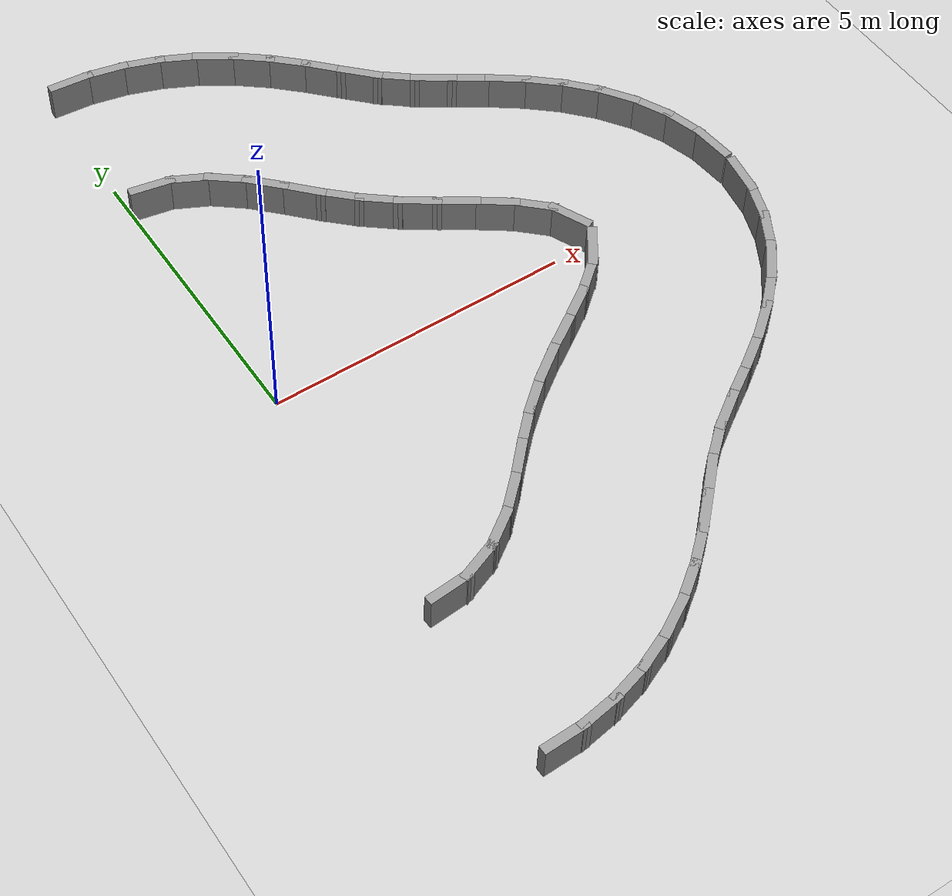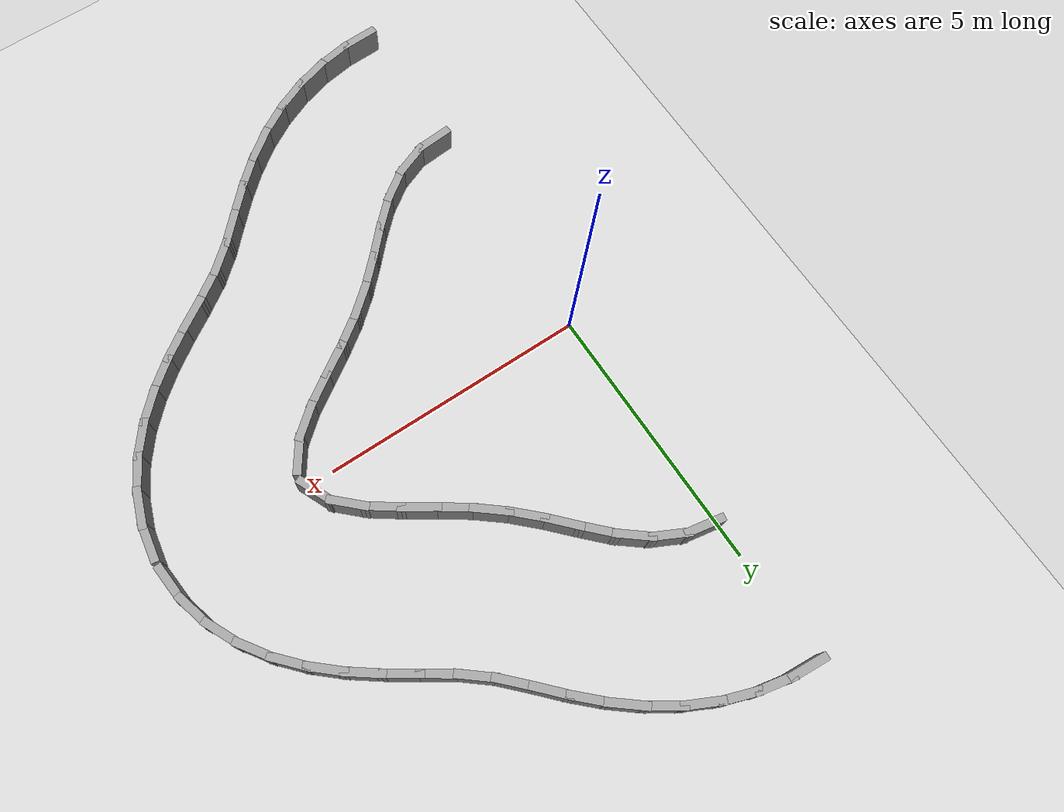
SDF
<sdf version="1.7">
 <world name="default">
  <model name="ground_plane">
   <static>1</static>
   <link name="link">
    <collision name="collision">
     <geometry><plane><normal>0 0 1</normal><size>100 100</size></plane></geometry>
     <surface><friction><ode><mu>100</mu><mu2>50</mu2></ode></friction></surface>
    </collision>
    <visual name="visual">
     <cast_shadows>0</cast_shadows>
     <geometry><plane><normal>0 0 1</normal><size>100 100</size></plane></geometry>
     <material>
      <script><uri>file://media/materials/scripts/gazebo.material</uri><name>Gazebo/Grey</name></script>
     </material>
    </visual>
   </link>
  </model>
  <model name="rand_lobed_08">
   <link name="Wall_0">
    <collision name="Wall_0_Collision">
     <geometry><box><size>0.7386 0.1500 0.6000</size></box></geometry>
     <pose>0 0 0.3000 0 -0 0</pose>
    </collision>
    <visual name="Wall_0_Visual">
     <pose>0 0 0.3000 0 -0 0</pose>
     <geometry><box><size>0.7386 0.1500 0.6000</size></box></geometry>
     <material>
      <script><uri>file://media/materials/scripts/gazebo.material</uri><name>Gazebo/Grey</name></script>
      <ambient>1 1 1 1</ambient>
     </material>
    </visual>
    <pose>5.4286 0.2678 0 0 -0 1.99792</pose>
   </link>
   <link name="Wall_1">
    <collision name="Wall_1_Collision">
     <geometry><box><size>0.7489 0.1500 0.6000</size></box></geometry>
     <pose>0 0 0.3000 0 -0 0</pose>
    </collision>
    <visual name="Wall_1_Visual">
     <pose>0 0 0.3000 0 -0 0</pose>
     <geometry><box><size>0.7489 0.1500 0.6000</size></box></geometry>
     <material>
      <script><uri>file://media/materials/scripts/gazebo.material</uri><name>Gazebo/Grey</name></script>
      <ambient>1 1 1 1</ambient>
     </material>
    </visual>
    <pose>5.0886 0.7409 0 0 -0 2.38649</pose>
   </link>
   <link name="Wall_2">
    <collision name="Wall_2_Collision">
     <geometry><box><size>0.7498 0.1500 0.6000</size></box></geometry>
     <pose>0 0 0.3000 0 -0 0</pose>
    </collision>
    <visual name="Wall_2_Visual">
     <pose>0 0 0.3000 0 -0 0</pose>
     <geometry><box><size>0.7498 0.1500 0.6000</size></box></geometry>
     <material>
      <script><uri>file://media/materials/scripts/gazebo.material</uri><name>Gazebo/Grey</name></script>
      <ambient>1 1 1 1</ambient>
     </material>
    </visual>
    <pose>4.6254 1.1188 0 0 -0 2.52788</pose>
   </link>
   <link name="Wall_3">
    <collision name="Wall_3_Collision">
     <geometry><box><size>0.7500 0.1500 0.6000</size></box></geometry>
     <pose>0 0 0.3000 0 -0 0</pose>
    </collision>
    <visual name="Wall_3_Visual">
     <pose>0 0 0.3000 0 -0 0</pose>
     <geometry><box><size>0.7500 0.1500 0.6000</size></box></geometry>
     <material>
      <script><uri>file://media/materials/scripts/gazebo.material</uri><name>Gazebo/Grey</name></script>
      <ambient>1 1 1 1</ambient>
     </material>
    </visual>
    <pose>4.1282 1.4542 0 0 -0 2.56857</pose>
   </link>
   <link name="Wall_4">
    <collision name="Wall_4_Collision">
     <geometry><box><size>0.7499 0.1500 0.6000</size></box></geometry>
     <pose>0 0 0.3000 0 -0 0</pose>
    </collision>
    <visual name="Wall_4_Visual">
     <pose>0 0 0.3000 0 -0 0</pose>
     <geometry><box><size>0.7499 0.1500 0.6000</size></box></geometry>
     <material>
      <script><uri>file://media/materials/scripts/gazebo.material</uri><name>Gazebo/Grey</name></script>
      <ambient>1 1 1 1</ambient>
     </material>
    </visual>
    <pose>3.6289 1.7867 0 0 -0 2.53948</pose>
   </link>
   <link name="Wall_5">
    <collision name="Wall_5_Collision">
     <geometry><box><size>0.7498 0.1500 0.6000</size></box></geometry>
     <pose>0 0 0.3000 0 -0 0</pose>
    </collision>
    <visual name="Wall_5_Visual">
     <pose>0 0 0.3000 0 -0 0</pose>
     <geometry><box><size>0.7498 0.1500 0.6000</size></box></geometry>
     <material>
      <script><uri>file://media/materials/scripts/gazebo.material</uri><name>Gazebo/Grey</name></script>
      <ambient>1 1 1 1</ambient>
     </material>
    </visual>
    <pose>3.1477 2.1443 0 0 -0 2.46569</pose>
   </link>
   <link name="Wall_6">
    <collision name="Wall_6_Collision">
     <geometry><box><size>0.7499 0.1500 0.6000</size></box></geometry>
     <pose>0 0 0.3000 0 -0 0</pose>
    </collision>
    <visual name="Wall_6_Visual">
     <pose>0 0 0.3000 0 -0 0</pose>
     <geometry><box><size>0.7499 0.1500 0.6000</size></box></geometry>
     <material>
      <script><uri>file://media/materials/scripts/gazebo.material</uri><name>Gazebo/Grey</name></script>
      <ambient>1 1 1 1</ambient>
     </material>
    </visual>
    <pose>2.6962 2.5384 0 0 -0 2.38234</pose>
   </link>
   <link name="Wall_7">
    <collision name="Wall_7_Collision">
     <geometry><box><size>0.7500 0.1500 0.6000</size></box></geometry>
     <pose>0 0 0.3000 0 -0 0</pose>
    </collision>
    <visual name="Wall_7_Visual">
     <pose>0 0 0.3000 0 -0 0</pose>
     <geometry><box><size>0.7500 0.1500 0.6000</size></box></geometry>
     <material>
      <script><uri>file://media/materials/scripts/gazebo.material</uri><name>Gazebo/Grey</name></script>
      <ambient>1 1 1 1</ambient>
     </material>
    </visual>
    <pose>2.2717 2.9620 0 0 -0 2.33183</pose>
   </link>
   <link name="Wall_8">
    <collision name="Wall_8_Collision">
     <geometry><box><size>0.7499 0.1500 0.6000</size></box></geometry>
     <pose>0 0 0.3000 0 -0 0</pose>
    </collision>
    <visual name="Wall_8_Visual">
     <pose>0 0 0.3000 0 -0 0</pose>
     <geometry><box><size>0.7499 0.1500 0.6000</size></box></geometry>
     <material>
      <script><uri>file://media/materials/scripts/gazebo.material</uri><name>Gazebo/Grey</name></script>
      <ambient>1 1 1 1</ambient>
     </material>
    </visual>
    <pose>1.8532 3.3918 0 0 -0 2.35398</pose>
   </link>
   <link name="Wall_9">
    <collision name="Wall_9_Collision">
     <geometry><box><size>0.7493 0.1500 0.6000</size></box></geometry>
     <pose>0 0 0.3000 0 -0 0</pose>
    </collision>
    <visual name="Wall_9_Visual">
     <pose>0 0 0.3000 0 -0 0</pose>
     <geometry><box><size>0.7493 0.1500 0.6000</size></box></geometry>
     <material>
      <script><uri>file://media/materials/scripts/gazebo.material</uri><name>Gazebo/Grey</name></script>
      <ambient>1 1 1 1</ambient>
     </material>
    </visual>
    <pose>1.4067 3.7904 0 0 -0 2.47175</pose>
   </link>
   <link name="Wall_10">
    <collision name="Wall_10_Collision">
     <geometry><box><size>0.7484 0.1500 0.6000</size></box></geometry>
     <pose>0 0 0.3000 0 -0 0</pose>
    </collision>
    <visual name="Wall_10_Visual">
     <pose>0 0 0.3000 0 -0 0</pose>
     <geometry><box><size>0.7484 0.1500 0.6000</size></box></geometry>
     <material>
      <script><uri>file://media/materials/scripts/gazebo.material</uri><name>Gazebo/Grey</name></script>
      <ambient>1 1 1 1</ambient>
     </material>
    </visual>
    <pose>0.9035 4.1090 0 0 -0 2.68288</pose>
   </link>
   <link name="Wall_11">
    <collision name="Wall_11_Collision">
     <geometry><box><size>0.7477 0.1500 0.6000</size></box></geometry>
     <pose>0 0 0.3000 0 -0 0</pose>
    </collision>
    <visual name="Wall_11_Visual">
     <pose>0 0 0.3000 0 -0 0</pose>
     <geometry><box><size>0.7477 0.1500 0.6000</size></box></geometry>
     <material>
      <script><uri>file://media/materials/scripts/gazebo.material</uri><name>Gazebo/Grey</name></script>
      <ambient>1 1 1 1</ambient>
     </material>
    </visual>
    <pose>0.3411 4.2944 0 0 -0 2.96334</pose>
   </link>
   <link name="Wall_36">
    <collision name="Wall_36_Collision">
     <geometry><box><size>0.7476 0.1500 0.6000</size></box></geometry>
     <pose>0 0 0.3000 0 -0 0</pose>
    </collision>
    <visual name="Wall_36_Visual">
     <pose>0 0 0.3000 0 -0 0</pose>
     <geometry><box><size>0.7476 0.1500 0.6000</size></box></geometry>
     <material>
      <script><uri>file://media/materials/scripts/gazebo.material</uri><name>Gazebo/Grey</name></script>
      <ambient>1 1 1 1</ambient>
     </material>
    </visual>
    <pose>0.1569 -4.3183 0 0 -0 0.08225</pose>
   </link>
   <link name="Wall_37">
    <collision name="Wall_37_Collision">
     <geometry><box><size>0.7481 0.1500 0.6000</size></box></geometry>
     <pose>0 0 0.3000 0 -0 0</pose>
    </collision>
    <visual name="Wall_37_Visual">
     <pose>0 0 0.3000 0 -0 0</pose>
     <geometry><box><size>0.7481 0.1500 0.6000</size></box></geometry>
     <material>
      <script><uri>file://media/materials/scripts/gazebo.material</uri><name>Gazebo/Grey</name></script>
      <ambient>1 1 1 1</ambient>
     </material>
    </visual>
    <pose>0.7328 -4.1837 0 0 -0 0.37663</pose>
   </link>
   <link name="Wall_38">
    <collision name="Wall_38_Collision">
     <geometry><box><size>0.7490 0.1500 0.6000</size></box></geometry>
     <pose>0 0 0.3000 0 -0 0</pose>
    </collision>
    <visual name="Wall_38_Visual">
     <pose>0 0 0.3000 0 -0 0</pose>
     <geometry><box><size>0.7490 0.1500 0.6000</size></box></geometry>
     <material>
      <script><uri>file://media/materials/scripts/gazebo.material</uri><name>Gazebo/Grey</name></script>
      <ambient>1 1 1 1</ambient>
     </material>
    </visual>
    <pose>1.2559 -3.9014 0 0 -0 0.61299</pose>
   </link>
   <link name="Wall_39">
    <collision name="Wall_39_Collision">
     <geometry><box><size>0.7497 0.1500 0.6000</size></box></geometry>
     <pose>0 0 0.3000 0 -0 0</pose>
    </collision>
    <visual name="Wall_39_Visual">
     <pose>0 0 0.3000 0 -0 0</pose>
     <geometry><box><size>0.7497 0.1500 0.6000</size></box></geometry>
     <material>
      <script><uri>file://media/materials/scripts/gazebo.material</uri><name>Gazebo/Grey</name></script>
      <ambient>1 1 1 1</ambient>
     </material>
    </visual>
    <pose>1.7179 -3.5222 0 0 -0 0.76140</pose>
   </link>
   <link name="Wall_40">
    <collision name="Wall_40_Collision">
     <geometry><box><size>0.7500 0.1500 0.6000</size></box></geometry>
     <pose>0 0 0.3000 0 -0 0</pose>
    </collision>
    <visual name="Wall_40_Visual">
     <pose>0 0 0.3000 0 -0 0</pose>
     <geometry><box><size>0.7500 0.1500 0.6000</size></box></geometry>
     <material>
      <script><uri>file://media/materials/scripts/gazebo.material</uri><name>Gazebo/Grey</name></script>
      <ambient>1 1 1 1</ambient>
     </material>
    </visual>
    <pose>2.1414 -3.0976 0 0 -0 0.81219</pose>
   </link>
   <link name="Wall_41">
    <collision name="Wall_41_Collision">
     <geometry><box><size>0.7499 0.1500 0.6000</size></box></geometry>
     <pose>0 0 0.3000 0 -0 0</pose>
    </collision>
    <visual name="Wall_41_Visual">
     <pose>0 0 0.3000 0 -0 0</pose>
     <geometry><box><size>0.7499 0.1500 0.6000</size></box></geometry>
     <material>
      <script><uri>file://media/materials/scripts/gazebo.material</uri><name>Gazebo/Grey</name></script>
      <ambient>1 1 1 1</ambient>
     </material>
    </visual>
    <pose>2.5609 -2.6688 0 0 -0 0.78065</pose>
   </link>
   <link name="Wall_42">
    <collision name="Wall_42_Collision">
     <geometry><box><size>0.7498 0.1500 0.6000</size></box></geometry>
     <pose>0 0 0.3000 0 -0 0</pose>
    </collision>
    <visual name="Wall_42_Visual">
     <pose>0 0 0.3000 0 -0 0</pose>
     <geometry><box><size>0.7498 0.1500 0.6000</size></box></geometry>
     <material>
      <script><uri>file://media/materials/scripts/gazebo.material</uri><name>Gazebo/Grey</name></script>
      <ambient>1 1 1 1</ambient>
     </material>
    </visual>
    <pose>3.0028 -2.2638 0 0 -0 0.70291</pose>
   </link>
   <link name="Wall_43">
    <collision name="Wall_43_Collision">
     <geometry><box><size>0.7499 0.1500 0.6000</size></box></geometry>
     <pose>0 0 0.3000 0 -0 0</pose>
    </collision>
    <visual name="Wall_43_Visual">
     <pose>0 0 0.3000 0 -0 0</pose>
     <geometry><box><size>0.7499 0.1500 0.6000</size></box></geometry>
     <material>
      <script><uri>file://media/materials/scripts/gazebo.material</uri><name>Gazebo/Grey</name></script>
      <ambient>1 1 1 1</ambient>
     </material>
    </visual>
    <pose>3.4754 -1.8952 0 0 -0 0.62189</pose>
   </link>
   <link name="Wall_44">
    <collision name="Wall_44_Collision">
     <geometry><box><size>0.7500 0.1500 0.6000</size></box></geometry>
     <pose>0 0 0.3000 0 -0 0</pose>
    </collision>
    <visual name="Wall_44_Visual">
     <pose>0 0 0.3000 0 -0 0</pose>
     <geometry><box><size>0.7500 0.1500 0.6000</size></box></geometry>
     <material>
      <script><uri>file://media/materials/scripts/gazebo.material</uri><name>Gazebo/Grey</name></script>
      <ambient>1 1 1 1</ambient>
     </material>
    </visual>
    <pose>3.9708 -1.5571 0 0 -0 0.57565</pose>
   </link>
   <link name="Wall_45">
    <collision name="Wall_45_Collision">
     <geometry><box><size>0.7499 0.1500 0.6000</size></box></geometry>
     <pose>0 0 0.3000 0 -0 0</pose>
    </collision>
    <visual name="Wall_45_Visual">
     <pose>0 0 0.3000 0 -0 0</pose>
     <geometry><box><size>0.7499 0.1500 0.6000</size></box></geometry>
     <material>
      <script><uri>file://media/materials/scripts/gazebo.material</uri><name>Gazebo/Grey</name></script>
      <ambient>1 1 1 1</ambient>
     </material>
    </visual>
    <pose>4.4714 -1.2264 0 0 -0 0.59210</pose>
   </link>
   <link name="Wall_46">
    <collision name="Wall_46_Collision">
     <geometry><box><size>0.7493 0.1500 0.6000</size></box></geometry>
     <pose>0 0 0.3000 0 -0 0</pose>
    </collision>
    <visual name="Wall_46_Visual">
     <pose>0 0 0.3000 0 -0 0</pose>
     <geometry><box><size>0.7493 0.1500 0.6000</size></box></geometry>
     <material>
      <script><uri>file://media/materials/scripts/gazebo.material</uri><name>Gazebo/Grey</name></script>
      <ambient>1 1 1 1</ambient>
     </material>
    </visual>
    <pose>4.9502 -0.8668 0 0 -0 0.69628</pose>
   </link>
   <link name="Wall_47">
    <collision name="Wall_47_Collision">
     <geometry><box><size>0.7452 0.1500 0.6000</size></box></geometry>
     <pose>0 0 0.3000 0 -0 0</pose>
    </collision>
    <visual name="Wall_47_Visual">
     <pose>0 0 0.3000 0 -0 0</pose>
     <geometry><box><size>0.7452 0.1500 0.6000</size></box></geometry>
     <material>
      <script><uri>file://media/materials/scripts/gazebo.material</uri><name>Gazebo/Grey</name></script>
      <ambient>1 1 1 1</ambient>
     </material>
    </visual>
    <pose>5.3488 -0.4294 0 0 -0 0.96819</pose>
   </link>
   <link name="Wall_48">
    <collision name="Wall_48_Collision">
     <geometry><box><size>0.7491 0.1500 0.6000</size></box></geometry>
     <pose>0 0 0.3000 0 -0 0</pose>
    </collision>
    <visual name="Wall_48_Visual">
     <pose>0 0 0.3000 0 -0 0</pose>
     <geometry><box><size>0.7491 0.1500 0.6000</size></box></geometry>
     <material>
      <script><uri>file://media/materials/scripts/gazebo.material</uri><name>Gazebo/Grey</name></script>
      <ambient>1 1 1 1</ambient>
     </material>
    </visual>
    <pose>8.1975 0.2982 0 0 -0 1.66530</pose>
   </link>
   <link name="Wall_49">
    <collision name="Wall_49_Collision">
     <geometry><box><size>0.7492 0.1500 0.6000</size></box></geometry>
     <pose>0 0 0.3000 0 -0 0</pose>
    </collision>
    <visual name="Wall_49_Visual">
     <pose>0 0 0.3000 0 -0 0</pose>
     <geometry><box><size>0.7492 0.1500 0.6000</size></box></geometry>
     <material>
      <script><uri>file://media/materials/scripts/gazebo.material</uri><name>Gazebo/Grey</name></script>
      <ambient>1 1 1 1</ambient>
     </material>
    </visual>
    <pose>8.0867 0.8844 0 0 -0 1.84998</pose>
   </link>
   <link name="Wall_50">
    <collision name="Wall_50_Collision">
     <geometry><box><size>0.7493 0.1500 0.6000</size></box></geometry>
     <pose>0 0 0.3000 0 -0 0</pose>
    </collision>
    <visual name="Wall_50_Visual">
     <pose>0 0 0.3000 0 -0 0</pose>
     <geometry><box><size>0.7493 0.1500 0.6000</size></box></geometry>
     <material>
      <script><uri>file://media/materials/scripts/gazebo.material</uri><name>Gazebo/Grey</name></script>
      <ambient>1 1 1 1</ambient>
     </material>
    </visual>
    <pose>7.8731 1.4419 0 0 -0 2.02345</pose>
   </link>
   <link name="Wall_51">
    <collision name="Wall_51_Collision">
     <geometry><box><size>0.7495 0.1500 0.6000</size></box></geometry>
     <pose>0 0 0.3000 0 -0 0</pose>
    </collision>
    <visual name="Wall_51_Visual">
     <pose>0 0 0.3000 0 -0 0</pose>
     <geometry><box><size>0.7495 0.1500 0.6000</size></box></geometry>
     <material>
      <script><uri>file://media/materials/scripts/gazebo.material</uri><name>Gazebo/Grey</name></script>
      <ambient>1 1 1 1</ambient>
     </material>
    </visual>
    <pose>7.5705 1.9572 0 0 -0 2.17990</pose>
   </link>
   <link name="Wall_52">
    <collision name="Wall_52_Collision">
     <geometry><box><size>0.7496 0.1500 0.6000</size></box></geometry>
     <pose>0 0 0.3000 0 -0 0</pose>
    </collision>
    <visual name="Wall_52_Visual">
     <pose>0 0 0.3000 0 -0 0</pose>
     <geometry><box><size>0.7496 0.1500 0.6000</size></box></geometry>
     <material>
      <script><uri>file://media/materials/scripts/gazebo.material</uri><name>Gazebo/Grey</name></script>
      <ambient>1 1 1 1</ambient>
     </material>
    </visual>
    <pose>7.1959 2.4235 0 0 -0 2.31528</pose>
   </link>
   <link name="Wall_53">
    <collision name="Wall_53_Collision">
     <geometry><box><size>0.7498 0.1500 0.6000</size></box></geometry>
     <pose>0 0 0.3000 0 -0 0</pose>
    </collision>
    <visual name="Wall_53_Visual">
     <pose>0 0 0.3000 0 -0 0</pose>
     <geometry><box><size>0.7498 0.1500 0.6000</size></box></geometry>
     <material>
      <script><uri>file://media/materials/scripts/gazebo.material</uri><name>Gazebo/Grey</name></script>
      <ambient>1 1 1 1</ambient>
     </material>
    </visual>
    <pose>6.7662 2.8405 0 0 -0 2.42709</pose>
   </link>
   <link name="Wall_54">
    <collision name="Wall_54_Collision">
     <geometry><box><size>0.7499 0.1500 0.6000</size></box></geometry>
     <pose>0 0 0.3000 0 -0 0</pose>
    </collision>
    <visual name="Wall_54_Visual">
     <pose>0 0 0.3000 0 -0 0</pose>
     <geometry><box><size>0.7499 0.1500 0.6000</size></box></geometry>
     <material>
      <script><uri>file://media/materials/scripts/gazebo.material</uri><name>Gazebo/Grey</name></script>
      <ambient>1 1 1 1</ambient>
     </material>
    </visual>
    <pose>6.2973 3.2136 0 0 -0 2.51190</pose>
   </link>
   <link name="Wall_55">
    <collision name="Wall_55_Collision">
     <geometry><box><size>0.7500 0.1500 0.6000</size></box></geometry>
     <pose>0 0 0.3000 0 -0 0</pose>
    </collision>
    <visual name="Wall_55_Visual">
     <pose>0 0 0.3000 0 -0 0</pose>
     <geometry><box><size>0.7500 0.1500 0.6000</size></box></geometry>
     <material>
      <script><uri>file://media/materials/scripts/gazebo.material</uri><name>Gazebo/Grey</name></script>
      <ambient>1 1 1 1</ambient>
     </material>
    </visual>
    <pose>5.8039 3.5545 0 0 -0 2.56202</pose>
   </link>
   <link name="Wall_56">
    <collision name="Wall_56_Collision">
     <geometry><box><size>0.7499 0.1500 0.6000</size></box></geometry>
     <pose>0 0 0.3000 0 -0 0</pose>
    </collision>
    <visual name="Wall_56_Visual">
     <pose>0 0 0.3000 0 -0 0</pose>
     <geometry><box><size>0.7499 0.1500 0.6000</size></box></geometry>
     <material>
      <script><uri>file://media/materials/scripts/gazebo.material</uri><name>Gazebo/Grey</name></script>
      <ambient>1 1 1 1</ambient>
     </material>
    </visual>
    <pose>5.3027 3.8844 0 0 -0 2.55697</pose>
   </link>
   <link name="Wall_57">
    <collision name="Wall_57_Collision">
     <geometry><box><size>0.7495 0.1500 0.6000</size></box></geometry>
     <pose>0 0 0.3000 0 -0 0</pose>
    </collision>
    <visual name="Wall_57_Visual">
     <pose>0 0 0.3000 0 -0 0</pose>
     <geometry><box><size>0.7495 0.1500 0.6000</size></box></geometry>
     <material>
      <script><uri>file://media/materials/scripts/gazebo.material</uri><name>Gazebo/Grey</name></script>
      <ambient>1 1 1 1</ambient>
     </material>
    </visual>
    <pose>4.8191 4.2380 0 0 -0 2.46338</pose>
   </link>
   <link name="Wall_58">
    <collision name="Wall_58_Collision">
     <geometry><box><size>0.7499 0.1500 0.6000</size></box></geometry>
     <pose>0 0 0.3000 0 -0 0</pose>
    </collision>
    <visual name="Wall_58_Visual">
     <pose>0 0 0.3000 0 -0 0</pose>
     <geometry><box><size>0.7499 0.1500 0.6000</size></box></geometry>
     <material>
      <script><uri>file://media/materials/scripts/gazebo.material</uri><name>Gazebo/Grey</name></script>
      <ambient>1 1 1 1</ambient>
     </material>
    </visual>
    <pose>4.3748 4.6394 0 0 -0 2.35067</pose>
   </link>
   <link name="Wall_59">
    <collision name="Wall_59_Collision">
     <geometry><box><size>0.7500 0.1500 0.6000</size></box></geometry>
     <pose>0 0 0.3000 0 -0 0</pose>
    </collision>
    <visual name="Wall_59_Visual">
     <pose>0 0 0.3000 0 -0 0</pose>
     <geometry><box><size>0.7500 0.1500 0.6000</size></box></geometry>
     <material>
      <script><uri>file://media/materials/scripts/gazebo.material</uri><name>Gazebo/Grey</name></script>
      <ambient>1 1 1 1</ambient>
     </material>
    </visual>
    <pose>3.9566 5.0695 0 0 -0 2.33354</pose>
   </link>
   <link name="Wall_60">
    <collision name="Wall_60_Collision">
     <geometry><box><size>0.7499 0.1500 0.6000</size></box></geometry>
     <pose>0 0 0.3000 0 -0 0</pose>
    </collision>
    <visual name="Wall_60_Visual">
     <pose>0 0 0.3000 0 -0 0</pose>
     <geometry><box><size>0.7499 0.1500 0.6000</size></box></geometry>
     <material>
      <script><uri>file://media/materials/scripts/gazebo.material</uri><name>Gazebo/Grey</name></script>
      <ambient>1 1 1 1</ambient>
     </material>
    </visual>
    <pose>3.5314 5.4925 0 0 -0 2.38412</pose>
   </link>
   <link name="Wall_61">
    <collision name="Wall_61_Collision">
     <geometry><box><size>0.7498 0.1500 0.6000</size></box></geometry>
     <pose>0 0 0.3000 0 -0 0</pose>
    </collision>
    <visual name="Wall_61_Visual">
     <pose>0 0 0.3000 0 -0 0</pose>
     <geometry><box><size>0.7498 0.1500 0.6000</size></box></geometry>
     <material>
      <script><uri>file://media/materials/scripts/gazebo.material</uri><name>Gazebo/Grey</name></script>
      <ambient>1 1 1 1</ambient>
     </material>
    </visual>
    <pose>3.0790 5.8855 0 0 -0 2.46860</pose>
   </link>
   <link name="Wall_62">
    <collision name="Wall_62_Collision">
     <geometry><box><size>0.7497 0.1500 0.6000</size></box></geometry>
     <pose>0 0 0.3000 0 -0 0</pose>
    </collision>
    <visual name="Wall_62_Visual">
     <pose>0 0 0.3000 0 -0 0</pose>
     <geometry><box><size>0.7497 0.1500 0.6000</size></box></geometry>
     <material>
      <script><uri>file://media/materials/scripts/gazebo.material</uri><name>Gazebo/Grey</name></script>
      <ambient>1 1 1 1</ambient>
     </material>
    </visual>
    <pose>2.5920 6.2341 0 0 -0 2.57186</pose>
   </link>
   <link name="Wall_63">
    <collision name="Wall_63_Collision">
     <geometry><box><size>0.7496 0.1500 0.6000</size></box></geometry>
     <pose>0 0 0.3000 0 -0 0</pose>
    </collision>
    <visual name="Wall_63_Visual">
     <pose>0 0 0.3000 0 -0 0</pose>
     <geometry><box><size>0.7496 0.1500 0.6000</size></box></geometry>
     <material>
      <script><uri>file://media/materials/scripts/gazebo.material</uri><name>Gazebo/Grey</name></script>
      <ambient>1 1 1 1</ambient>
     </material>
    </visual>
    <pose>2.0702 6.5276 0 0 -0 2.68671</pose>
   </link>
   <link name="Wall_64">
    <collision name="Wall_64_Collision">
     <geometry><box><size>0.7496 0.1500 0.6000</size></box></geometry>
     <pose>0 0 0.3000 0 -0 0</pose>
    </collision>
    <visual name="Wall_64_Visual">
     <pose>0 0 0.3000 0 -0 0</pose>
     <geometry><box><size>0.7496 0.1500 0.6000</size></box></geometry>
     <material>
      <script><uri>file://media/materials/scripts/gazebo.material</uri><name>Gazebo/Grey</name></script>
      <ambient>1 1 1 1</ambient>
     </material>
    </visual>
    <pose>1.5175 6.7572 0 0 -0 2.80903</pose>
   </link>
   <link name="Wall_65">
    <collision name="Wall_65_Collision">
     <geometry><box><size>0.7496 0.1500 0.6000</size></box></geometry>
     <pose>0 0 0.3000 0 -0 0</pose>
    </collision>
    <visual name="Wall_65_Visual">
     <pose>0 0 0.3000 0 -0 0</pose>
     <geometry><box><size>0.7496 0.1500 0.6000</size></box></geometry>
     <material>
      <script><uri>file://media/materials/scripts/gazebo.material</uri><name>Gazebo/Grey</name></script>
      <ambient>1 1 1 1</ambient>
     </material>
    </visual>
    <pose>0.9406 6.9163 0 0 -0 2.93595</pose>
   </link>
   <link name="Wall_66">
    <collision name="Wall_66_Collision">
     <geometry><box><size>0.7496 0.1500 0.6000</size></box></geometry>
     <pose>0 0 0.3000 0 -0 0</pose>
    </collision>
    <visual name="Wall_66_Visual">
     <pose>0 0 0.3000 0 -0 0</pose>
     <geometry><box><size>0.7496 0.1500 0.6000</size></box></geometry>
     <material>
      <script><uri>file://media/materials/scripts/gazebo.material</uri><name>Gazebo/Grey</name></script>
      <ambient>1 1 1 1</ambient>
     </material>
    </visual>
    <pose>0.3482 7.0003 0 0 -0 3.06560</pose>
   </link>
   <link name="Wall_105">
    <collision name="Wall_105_Collision">
     <geometry><box><size>0.7496 0.1500 0.6000</size></box></geometry>
     <pose>0 0 0.3000 0 -0 0</pose>
    </collision>
    <visual name="Wall_105_Visual">
     <pose>0 0 0.3000 0 -0 0</pose>
     <geometry><box><size>0.7496 0.1500 0.6000</size></box></geometry>
     <material>
      <script><uri>file://media/materials/scripts/gazebo.material</uri><name>Gazebo/Grey</name></script>
      <ambient>1 1 1 1</ambient>
     </material>
    </visual>
    <pose>0.1517 -7.0110 0 0 -0 0.03309</pose>
   </link>
   <link name="Wall_106">
    <collision name="Wall_106_Collision">
     <geometry><box><size>0.7496 0.1500 0.6000</size></box></geometry>
     <pose>0 0 0.3000 0 -0 0</pose>
    </collision>
    <visual name="Wall_106_Visual">
     <pose>0 0 0.3000 0 -0 0</pose>
     <geometry><box><size>0.7496 0.1500 0.6000</size></box></geometry>
     <material>
      <script><uri>file://media/materials/scripts/gazebo.material</uri><name>Gazebo/Grey</name></script>
      <ambient>1 1 1 1</ambient>
     </material>
    </visual>
    <pose>0.7471 -6.9523 0 0 -0 0.16319</pose>
   </link>
   <link name="Wall_107">
    <collision name="Wall_107_Collision">
     <geometry><box><size>0.7496 0.1500 0.6000</size></box></geometry>
     <pose>0 0 0.3000 0 -0 0</pose>
    </collision>
    <visual name="Wall_107_Visual">
     <pose>0 0 0.3000 0 -0 0</pose>
     <geometry><box><size>0.7496 0.1500 0.6000</size></box></geometry>
     <material>
      <script><uri>file://media/materials/scripts/gazebo.material</uri><name>Gazebo/Grey</name></script>
      <ambient>1 1 1 1</ambient>
     </material>
    </visual>
    <pose>1.3301 -6.8175 0 0 -0 0.29126</pose>
   </link>
   <link name="Wall_108">
    <collision name="Wall_108_Collision">
     <geometry><box><size>0.7496 0.1500 0.6000</size></box></geometry>
     <pose>0 0 0.3000 0 -0 0</pose>
    </collision>
    <visual name="Wall_108_Visual">
     <pose>0 0 0.3000 0 -0 0</pose>
     <geometry><box><size>0.7496 0.1500 0.6000</size></box></geometry>
     <material>
      <script><uri>file://media/materials/scripts/gazebo.material</uri><name>Gazebo/Grey</name></script>
      <ambient>1 1 1 1</ambient>
     </material>
    </visual>
    <pose>1.8916 -6.6105 0 0 -0 0.41528</pose>
   </link>
   <link name="Wall_109">
    <collision name="Wall_109_Collision">
     <geometry><box><size>0.7497 0.1500 0.6000</size></box></geometry>
     <pose>0 0 0.3000 0 -0 0</pose>
    </collision>
    <visual name="Wall_109_Visual">
     <pose>0 0 0.3000 0 -0 0</pose>
     <geometry><box><size>0.7497 0.1500 0.6000</size></box></geometry>
     <material>
      <script><uri>file://media/materials/scripts/gazebo.material</uri><name>Gazebo/Grey</name></script>
      <ambient>1 1 1 1</ambient>
     </material>
    </visual>
    <pose>2.4242 -6.3372 0 0 -0 0.53299</pose>
   </link>
   <link name="Wall_110">
    <collision name="Wall_110_Collision">
     <geometry><box><size>0.7497 0.1500 0.6000</size></box></geometry>
     <pose>0 0 0.3000 0 -0 0</pose>
    </collision>
    <visual name="Wall_110_Visual">
     <pose>0 0 0.3000 0 -0 0</pose>
     <geometry><box><size>0.7497 0.1500 0.6000</size></box></geometry>
     <material>
      <script><uri>file://media/materials/scripts/gazebo.material</uri><name>Gazebo/Grey</name></script>
      <ambient>1 1 1 1</ambient>
     </material>
    </visual>
    <pose>2.9228 -6.0056 0 0 -0 0.64071</pose>
   </link>
   <link name="Wall_111">
    <collision name="Wall_111_Collision">
     <geometry><box><size>0.7498 0.1500 0.6000</size></box></geometry>
     <pose>0 0 0.3000 0 -0 0</pose>
    </collision>
    <visual name="Wall_111_Visual">
     <pose>0 0 0.3000 0 -0 0</pose>
     <geometry><box><size>0.7498 0.1500 0.6000</size></box></geometry>
     <material>
      <script><uri>file://media/materials/scripts/gazebo.material</uri><name>Gazebo/Grey</name></script>
      <ambient>1 1 1 1</ambient>
     </material>
    </visual>
    <pose>3.3862 -5.6258 0 0 -0 0.73245</pose>
   </link>
   <link name="Wall_112">
    <collision name="Wall_112_Collision">
     <geometry><box><size>0.7499 0.1500 0.6000</size></box></geometry>
     <pose>0 0 0.3000 0 -0 0</pose>
    </collision>
    <visual name="Wall_112_Visual">
     <pose>0 0 0.3000 0 -0 0</pose>
     <geometry><box><size>0.7499 0.1500 0.6000</size></box></geometry>
     <material>
      <script><uri>file://media/materials/scripts/gazebo.material</uri><name>Gazebo/Grey</name></script>
      <ambient>1 1 1 1</ambient>
     </material>
    </visual>
    <pose>3.8189 -5.2107 0 0 -0 0.79668</pose>
   </link>
   <link name="Wall_113">
    <collision name="Wall_113_Collision">
     <geometry><box><size>0.7500 0.1500 0.6000</size></box></geometry>
     <pose>0 0 0.3000 0 -0 0</pose>
    </collision>
    <visual name="Wall_113_Visual">
     <pose>0 0 0.3000 0 -0 0</pose>
     <geometry><box><size>0.7500 0.1500 0.6000</size></box></geometry>
     <material>
      <script><uri>file://media/materials/scripts/gazebo.material</uri><name>Gazebo/Grey</name></script>
      <ambient>1 1 1 1</ambient>
     </material>
    </visual>
    <pose>4.2361 -4.7795 0 0 -0 0.80719</pose>
   </link>
   <link name="Wall_114">
    <collision name="Wall_114_Collision">
     <geometry><box><size>0.7496 0.1500 0.6000</size></box></geometry>
     <pose>0 0 0.3000 0 -0 0</pose>
    </collision>
    <visual name="Wall_114_Visual">
     <pose>0 0 0.3000 0 -0 0</pose>
     <geometry><box><size>0.7496 0.1500 0.6000</size></box></geometry>
     <material>
      <script><uri>file://media/materials/scripts/gazebo.material</uri><name>Gazebo/Grey</name></script>
      <ambient>1 1 1 1</ambient>
     </material>
    </visual>
    <pose>4.6685 -4.3648 0 0 -0 0.72186</pose>
   </link>
   <link name="Wall_115">
    <collision name="Wall_115_Collision">
     <geometry><box><size>0.7498 0.1500 0.6000</size></box></geometry>
     <pose>0 0 0.3000 0 -0 0</pose>
    </collision>
    <visual name="Wall_115_Visual">
     <pose>0 0 0.3000 0 -0 0</pose>
     <geometry><box><size>0.7498 0.1500 0.6000</size></box></geometry>
     <material>
      <script><uri>file://media/materials/scripts/gazebo.material</uri><name>Gazebo/Grey</name></script>
      <ambient>1 1 1 1</ambient>
     </material>
    </visual>
    <pose>5.1403 -3.9961 0 0 -0 0.60486</pose>
   </link>
   <link name="Wall_116">
    <collision name="Wall_116_Collision">
     <geometry><box><size>0.7500 0.1500 0.6000</size></box></geometry>
     <pose>0 0 0.3000 0 -0 0</pose>
    </collision>
    <visual name="Wall_116_Visual">
     <pose>0 0 0.3000 0 -0 0</pose>
     <geometry><box><size>0.7500 0.1500 0.6000</size></box></geometry>
     <material>
      <script><uri>file://media/materials/scripts/gazebo.material</uri><name>Gazebo/Grey</name></script>
      <ambient>1 1 1 1</ambient>
     </material>
    </visual>
    <pose>5.6390 -3.6628 0 0 -0 0.57353</pose>
   </link>
   <link name="Wall_117">
    <collision name="Wall_117_Collision">
     <geometry><box><size>0.7499 0.1500 0.6000</size></box></geometry>
     <pose>0 0 0.3000 0 -0 0</pose>
    </collision>
    <visual name="Wall_117_Visual">
     <pose>0 0 0.3000 0 -0 0</pose>
     <geometry><box><size>0.7499 0.1500 0.6000</size></box></geometry>
     <material>
      <script><uri>file://media/materials/scripts/gazebo.material</uri><name>Gazebo/Grey</name></script>
      <ambient>1 1 1 1</ambient>
     </material>
    </visual>
    <pose>6.1370 -3.3285 0 0 -0 0.60877</pose>
   </link>
   <link name="Wall_118">
    <collision name="Wall_118_Collision">
     <geometry><box><size>0.7498 0.1500 0.6000</size></box></geometry>
     <pose>0 0 0.3000 0 -0 0</pose>
    </collision>
    <visual name="Wall_118_Visual">
     <pose>0 0 0.3000 0 -0 0</pose>
     <geometry><box><size>0.7498 0.1500 0.6000</size></box></geometry>
     <material>
      <script><uri>file://media/materials/scripts/gazebo.material</uri><name>Gazebo/Grey</name></script>
      <ambient>1 1 1 1</ambient>
     </material>
    </visual>
    <pose>6.6156 -2.9676 0 0 -0 0.68342</pose>
   </link>
   <link name="Wall_119">
    <collision name="Wall_119_Collision">
     <geometry><box><size>0.7497 0.1500 0.6000</size></box></geometry>
     <pose>0 0 0.3000 0 -0 0</pose>
    </collision>
    <visual name="Wall_119_Visual">
     <pose>0 0 0.3000 0 -0 0</pose>
     <geometry><box><size>0.7497 0.1500 0.6000</size></box></geometry>
     <material>
      <script><uri>file://media/materials/scripts/gazebo.material</uri><name>Gazebo/Grey</name></script>
      <ambient>1 1 1 1</ambient>
     </material>
    </visual>
    <pose>7.0599 -2.5659 0 0 -0 0.78680</pose>
   </link>
   <link name="Wall_120">
    <collision name="Wall_120_Collision">
     <geometry><box><size>0.7495 0.1500 0.6000</size></box></geometry>
     <pose>0 0 0.3000 0 -0 0</pose>
    </collision>
    <visual name="Wall_120_Visual">
     <pose>0 0 0.3000 0 -0 0</pose>
     <geometry><box><size>0.7495 0.1500 0.6000</size></box></geometry>
     <material>
      <script><uri>file://media/materials/scripts/gazebo.material</uri><name>Gazebo/Grey</name></script>
      <ambient>1 1 1 1</ambient>
     </material>
    </visual>
    <pose>7.4545 -2.1161 0 0 -0 0.91473</pose>
   </link>
   <link name="Wall_121">
    <collision name="Wall_121_Collision">
     <geometry><box><size>0.7494 0.1500 0.6000</size></box></geometry>
     <pose>0 0 0.3000 0 -0 0</pose>
    </collision>
    <visual name="Wall_121_Visual">
     <pose>0 0 0.3000 0 -0 0</pose>
     <geometry><box><size>0.7494 0.1500 0.6000</size></box></geometry>
     <material>
      <script><uri>file://media/materials/scripts/gazebo.material</uri><name>Gazebo/Grey</name></script>
      <ambient>1 1 1 1</ambient>
     </material>
    </visual>
    <pose>7.7826 -1.6165 0 0 -0 1.06451</pose>
   </link>
   <link name="Wall_122">
    <collision name="Wall_122_Collision">
     <geometry><box><size>0.7492 0.1500 0.6000</size></box></geometry>
     <pose>0 0 0.3000 0 -0 0</pose>
    </collision>
    <visual name="Wall_122_Visual">
     <pose>0 0 0.3000 0 -0 0</pose>
     <geometry><box><size>0.7492 0.1500 0.6000</size></box></geometry>
     <material>
      <script><uri>file://media/materials/scripts/gazebo.material</uri><name>Gazebo/Grey</name></script>
      <ambient>1 1 1 1</ambient>
     </material>
    </visual>
    <pose>8.0273 -1.0717 0 0 -0 1.23301</pose>
   </link>
   <link name="Wall_123">
    <collision name="Wall_123_Collision">
     <geometry><box><size>0.7491 0.1500 0.6000</size></box></geometry>
     <pose>0 0 0.3000 0 -0 0</pose>
    </collision>
    <visual name="Wall_123_Visual">
     <pose>0 0 0.3000 0 -0 0</pose>
     <geometry><box><size>0.7491 0.1500 0.6000</size></box></geometry>
     <material>
      <script><uri>file://media/materials/scripts/gazebo.material</uri><name>Gazebo/Grey</name></script>
      <ambient>1 1 1 1</ambient>
     </material>
    </visual>
    <pose>8.1731 -0.4931 0 0 -0 1.41490</pose>
   </link>
   <static>1</static>
  </model>
 </world>
</sdf>
